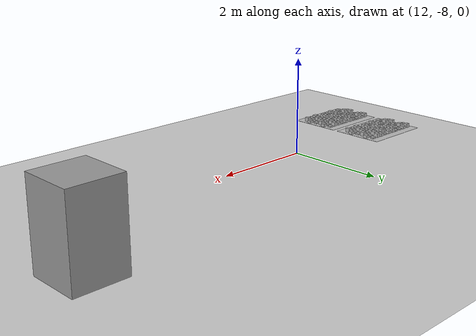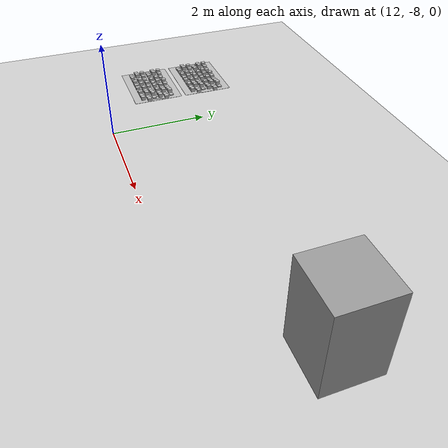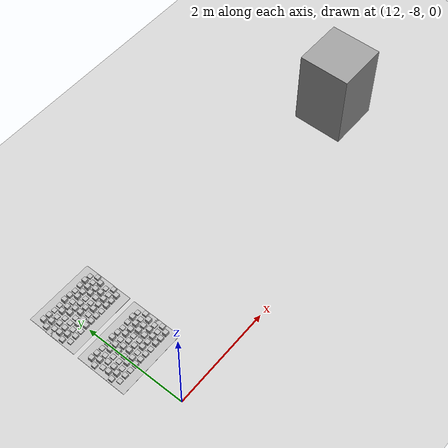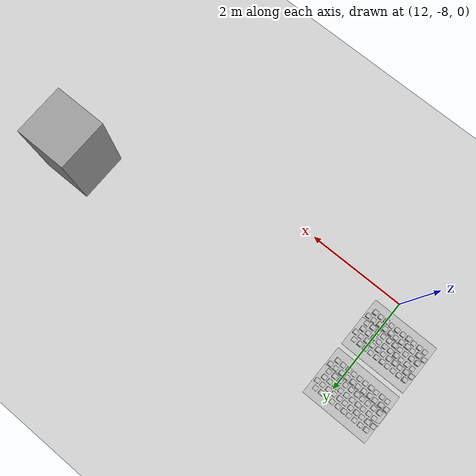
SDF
<sdf version="1.6">
 <world name="default">
  <model name="ground_plane">
   <static>1</static>
   <link name="link">
    <collision name="collision">
     <geometry><plane><normal>0 0 1</normal><size>100 100</size></plane></geometry>
     <surface><friction><ode><mu>100</mu><mu2>50</mu2></ode></friction></surface>
    </collision>
    <visual name="visual">
     <cast_shadows>0</cast_shadows>
     <geometry><plane><normal>0 0 1</normal><size>100 100</size></plane></geometry>
     <material>
      <script><uri>file://media/materials/scripts/gazebo.material</uri><name>Gazebo/Grey</name></script>
     </material>
    </visual>
   </link>
  </model>
  <model name="frc2016_roughterrain_clone_2_clone_clone_4_clone">
   <static>1</static>
   <link name="link">
    <visual name="platform">
     <pose>0 0 0.08269 0 -0 0</pose>
     <geometry><box><size>1.27 0.5969 0.003175</size></box></geometry>
    </visual>
    <collision name="platform">
     <pose>0 0 0.08269 0 -0 0</pose>
     <geometry><box><size>1.27 0.5969 0.003175</size></box></geometry>
    </collision>
    <visual name="row1_block1_sm">
     <pose>0.51435 0.1143 0.09698 0 -0 0</pose>
     <geometry><box><size>0.0762 0.0762 0.0254</size></box></geometry>
    </visual>
    <collision name="row1_block1_sm">
     <pose>0.51435 0.1143 0.09698 0 -0 0</pose>
     <geometry><box><size>0.0762 0.0762 0.0254</size></box></geometry>
    </collision>
    <visual name="row1_block2_lg">
     <pose>0.40005 0.1143 0.12238 0 -0 0</pose>
     <geometry><box><size>0.0762 0.0762 0.0762</size></box></geometry>
    </visual>
    <collision name="row1_block2_lg">
     <pose>0.40005 0.1143 0.12238 0 -0 0</pose>
     <geometry><box><size>0.0762 0.0762 0.0762</size></box></geometry>
    </collision>
    <visual name="row1_block3_md">
     <pose>0.28575 0.1143 0.10968 0 -0 0</pose>
     <geometry><box><size>0.0762 0.0762 0.0508</size></box></geometry>
    </visual>
    <collision name="row1_block3_md">
     <pose>0.28575 0.1143 0.10968 0 -0 0</pose>
     <geometry><box><size>0.0762 0.0762 0.0508</size></box></geometry>
    </collision>
    <visual name="row1_block4_sm">
     <pose>0.17145 0.1143 0.09698 0 -0 0</pose>
     <geometry><box><size>0.0762 0.0762 0.0254</size></box></geometry>
    </visual>
    <collision name="row1_block4_sm">
     <pose>0.17145 0.1143 0.09698 0 -0 0</pose>
     <geometry><box><size>0.0762 0.0762 0.0254</size></box></geometry>
    </collision>
    <visual name="row1_block5_md">
     <pose>0.05715 0.1143 0.10968 0 -0 0</pose>
     <geometry><box><size>0.0762 0.0762 0.0508</size></box></geometry>
    </visual>
    <collision name="row1_block5_md">
     <pose>0.05715 0.1143 0.10968 0 -0 0</pose>
     <geometry><box><size>0.0762 0.0762 0.0508</size></box></geometry>
    </collision>
    <visual name="row1_block6_lg">
     <pose>-0.05715 0.1143 0.12238 0 -0 0</pose>
     <geometry><box><size>0.0762 0.0762 0.0762</size></box></geometry>
    </visual>
    <collision name="row1_block6_lg">
     <pose>-0.05715 0.1143 0.12238 0 -0 0</pose>
     <geometry><box><size>0.0762 0.0762 0.0762</size></box></geometry>
    </collision>
    <visual name="row1_block7_sm">
     <pose>-0.17145 0.1143 0.09698 0 -0 0</pose>
     <geometry><box><size>0.0762 0.0762 0.0254</size></box></geometry>
    </visual>
    <collision name="row1_block7_sm">
     <pose>-0.17145 0.1143 0.09698 0 -0 0</pose>
     <geometry><box><size>0.0762 0.0762 0.0254</size></box></geometry>
    </collision>
    <visual name="row1_block8_sm">
     <pose>-0.28575 0.1143 0.09698 0 -0 0</pose>
     <geometry><box><size>0.0762 0.0762 0.0254</size></box></geometry>
    </visual>
    <collision name="row1_block8_sm">
     <pose>-0.28575 0.1143 0.09698 0 -0 0</pose>
     <geometry><box><size>0.0762 0.0762 0.0254</size></box></geometry>
    </collision>
    <visual name="row1_block9_md">
     <pose>-0.40005 0.1143 0.10968 0 -0 0</pose>
     <geometry><box><size>0.0762 0.0762 0.0508</size></box></geometry>
    </visual>
    <collision name="row1_block9_md">
     <pose>-0.40005 0.1143 0.10968 0 -0 0</pose>
     <geometry><box><size>0.0762 0.0762 0.0508</size></box></geometry>
    </collision>
    <visual name="row1_block10_lg">
     <pose>-0.51435 0.1143 0.12238 0 -0 0</pose>
     <geometry><box><size>0.0762 0.0762 0.0762</size></box></geometry>
    </visual>
    <collision name="row1_block10_lg">
     <pose>-0.51435 0.1143 0.12238 0 -0 0</pose>
     <geometry><box><size>0.0762 0.0762 0.0762</size></box></geometry>
    </collision>
    <visual name="row2_block1_md">
     <pose>0.5715 0 0.10968 0 -0 0</pose>
     <geometry><box><size>0.0762 0.0762 0.0508</size></box></geometry>
    </visual>
    <collision name="row2_block1_md">
     <pose>0.5715 0 0.10968 0 -0 0</pose>
     <geometry><box><size>0.0762 0.0762 0.0508</size></box></geometry>
    </collision>
    <visual name="row2_block2_sm">
     <pose>0.4572 0 0.09698 0 -0 0</pose>
     <geometry><box><size>0.0762 0.0762 0.0254</size></box></geometry>
    </visual>
    <collision name="row2_block2_sm">
     <pose>0.4572 0 0.09698 0 -0 0</pose>
     <geometry><box><size>0.0762 0.0762 0.0254</size></box></geometry>
    </collision>
    <visual name="row2_block3_lg">
     <pose>0.3429 0 0.12238 0 -0 0</pose>
     <geometry><box><size>0.0762 0.0762 0.0762</size></box></geometry>
    </visual>
    <collision name="row2_block3_lg">
     <pose>0.3429 0 0.12238 0 -0 0</pose>
     <geometry><box><size>0.0762 0.0762 0.0762</size></box></geometry>
    </collision>
    <visual name="row2_block4_md">
     <pose>0.2286 0 0.10968 0 -0 0</pose>
     <geometry><box><size>0.0762 0.0762 0.0508</size></box></geometry>
    </visual>
    <collision name="row2_block4_md">
     <pose>0.2286 0 0.10968 0 -0 0</pose>
     <geometry><box><size>0.0762 0.0762 0.0508</size></box></geometry>
    </collision>
    <visual name="row2_block5_lg">
     <pose>0.1143 0 0.12238 0 -0 0</pose>
     <geometry><box><size>0.0762 0.0762 0.0762</size></box></geometry>
    </visual>
    <collision name="row2_block5_lg">
     <pose>0.1143 0 0.12238 0 -0 0</pose>
     <geometry><box><size>0.0762 0.0762 0.0762</size></box></geometry>
    </collision>
    <visual name="row2_block6_sm">
     <pose>0 0 0.09698 0 -0 0</pose>
     <geometry><box><size>0.0762 0.0762 0.0254</size></box></geometry>
    </visual>
    <collision name="row2_block6_sm">
     <pose>0 0 0.09698 0 -0 0</pose>
     <geometry><box><size>0.0762 0.0762 0.0254</size></box></geometry>
    </collision>
    <visual name="row2_block7_md">
     <pose>-0.1143 0 0.10968 0 -0 0</pose>
     <geometry><box><size>0.0762 0.0762 0.0508</size></box></geometry>
    </visual>
    <collision name="row2_block7_md">
     <pose>-0.1143 0 0.10968 0 -0 0</pose>
     <geometry><box><size>0.0762 0.0762 0.0508</size></box></geometry>
    </collision>
    <visual name="row2_block8_lg">
     <pose>-0.2286 0 0.12238 0 -0 0</pose>
     <geometry><box><size>0.0762 0.0762 0.0762</size></box></geometry>
    </visual>
    <collision name="row2_block8_lg">
     <pose>-0.2286 0 0.12238 0 -0 0</pose>
     <geometry><box><size>0.0762 0.0762 0.0762</size></box></geometry>
    </collision>
    <visual name="row2_block9_sm">
     <pose>-0.3429 0 0.09698 0 -0 0</pose>
     <geometry><box><size>0.0762 0.0762 0.0254</size></box></geometry>
    </visual>
    <collision name="row2_block9_sm">
     <pose>-0.3429 0 0.09698 0 -0 0</pose>
     <geometry><box><size>0.0762 0.0762 0.0254</size></box></geometry>
    </collision>
    <visual name="row2_block10_lg">
     <pose>-0.4572 0 0.12238 0 -0 0</pose>
     <geometry><box><size>0.0762 0.0762 0.0762</size></box></geometry>
    </visual>
    <collision name="row2_block10_lg">
     <pose>-0.4572 0 0.12238 0 -0 0</pose>
     <geometry><box><size>0.0762 0.0762 0.0762</size></box></geometry>
    </collision>
    <visual name="row2_block11_md">
     <pose>-0.5715 0 0.10968 0 -0 0</pose>
     <geometry><box><size>0.0762 0.0762 0.0508</size></box></geometry>
    </visual>
    <collision name="row2_block11_md">
     <pose>-0.5715 0 0.10968 0 -0 0</pose>
     <geometry><box><size>0.0762 0.0762 0.0508</size></box></geometry>
    </collision>
    <visual name="row3_block1_lg">
     <pose>0.51435 -0.1143 0.12238 0 -0 0</pose>
     <geometry><box><size>0.0762 0.0762 0.0762</size></box></geometry>
    </visual>
    <collision name="row3_block1_lg">
     <pose>0.51435 -0.1143 0.12238 0 -0 0</pose>
     <geometry><box><size>0.0762 0.0762 0.0762</size></box></geometry>
    </collision>
    <visual name="row3_block2_md">
     <pose>0.40005 -0.1143 0.10968 0 -0 0</pose>
     <geometry><box><size>0.0762 0.0762 0.0508</size></box></geometry>
    </visual>
    <collision name="row3_block2_md">
     <pose>0.40005 -0.1143 0.10968 0 -0 0</pose>
     <geometry><box><size>0.0762 0.0762 0.0508</size></box></geometry>
    </collision>
    <visual name="row3_block3_lg">
     <pose>0.28575 -0.1143 0.12238 0 -0 0</pose>
     <geometry><box><size>0.0762 0.0762 0.0762</size></box></geometry>
    </visual>
    <collision name="row3_block3_lg">
     <pose>0.28575 -0.1143 0.12238 0 -0 0</pose>
     <geometry><box><size>0.0762 0.0762 0.0762</size></box></geometry>
    </collision>
    <visual name="row3_block4_sm">
     <pose>0.17145 -0.1143 0.09698 0 -0 0</pose>
     <geometry><box><size>0.0762 0.0762 0.0254</size></box></geometry>
    </visual>
    <collision name="row3_block4_sm">
     <pose>0.17145 -0.1143 0.09698 0 -0 0</pose>
     <geometry><box><size>0.0762 0.0762 0.0254</size></box></geometry>
    </collision>
    <visual name="row3_block5_md">
     <pose>0.05715 -0.1143 0.10968 0 -0 0</pose>
     <geometry><box><size>0.0762 0.0762 0.0508</size></box></geometry>
    </visual>
    <collision name="row3_block5_md">
     <pose>0.05715 -0.1143 0.10968 0 -0 0</pose>
     <geometry><box><size>0.0762 0.0762 0.0508</size></box></geometry>
    </collision>
    <visual name="row3_block6_md">
     <pose>-0.05715 -0.1143 0.10968 0 -0 0</pose>
     <geometry><box><size>0.0762 0.0762 0.0508</size></box></geometry>
    </visual>
    <collision name="row3_block6_md">
     <pose>-0.05715 -0.1143 0.10968 0 -0 0</pose>
     <geometry><box><size>0.0762 0.0762 0.0508</size></box></geometry>
    </collision>
    <visual name="row3_block7_lg">
     <pose>-0.17145 -0.1143 0.12238 0 -0 0</pose>
     <geometry><box><size>0.0762 0.0762 0.0762</size></box></geometry>
    </visual>
    <collision name="row3_block7_lg">
     <pose>-0.17145 -0.1143 0.12238 0 -0 0</pose>
     <geometry><box><size>0.0762 0.0762 0.0762</size></box></geometry>
    </collision>
    <visual name="row3_block8_sm">
     <pose>-0.28575 -0.1143 0.09698 0 -0 0</pose>
     <geometry><box><size>0.0762 0.0762 0.0254</size></box></geometry>
    </visual>
    <collision name="row3_block8_sm">
     <pose>-0.28575 -0.1143 0.09698 0 -0 0</pose>
     <geometry><box><size>0.0762 0.0762 0.0254</size></box></geometry>
    </collision>
    <visual name="row3_block9_md">
     <pose>-0.40005 -0.1143 0.10968 0 -0 0</pose>
     <geometry><box><size>0.0762 0.0762 0.0508</size></box></geometry>
    </visual>
    <collision name="row3_block9_md">
     <pose>-0.40005 -0.1143 0.10968 0 -0 0</pose>
     <geometry><box><size>0.0762 0.0762 0.0508</size></box></geometry>
    </collision>
    <visual name="row3_block10_sm">
     <pose>-0.51435 -0.1143 0.09698 0 -0 0</pose>
     <geometry><box><size>0.0762 0.0762 0.0254</size></box></geometry>
    </visual>
    <collision name="row3_block10_sm">
     <pose>-0.51435 -0.1143 0.09698 0 -0 0</pose>
     <geometry><box><size>0.0762 0.0762 0.0254</size></box></geometry>
    </collision>
   </link>
   <pose>11.8888 -5.87576 0.826533 0 -0 0</pose>
  </model>
  <model name="frc2016_roughterrain_clone_2_clone_clone_4_clone_0">
   <static>1</static>
   <link name="link">
    <visual name="platform">
     <pose>0 0 0.08269 0 -0 0</pose>
     <geometry><box><size>1.27 0.5969 0.003175</size></box></geometry>
    </visual>
    <collision name="platform">
     <pose>0 0 0.08269 0 -0 0</pose>
     <geometry><box><size>1.27 0.5969 0.003175</size></box></geometry>
    </collision>
    <visual name="row1_block1_sm">
     <pose>0.51435 0.1143 0.09698 0 -0 0</pose>
     <geometry><box><size>0.0762 0.0762 0.0254</size></box></geometry>
    </visual>
    <collision name="row1_block1_sm">
     <pose>0.51435 0.1143 0.09698 0 -0 0</pose>
     <geometry><box><size>0.0762 0.0762 0.0254</size></box></geometry>
    </collision>
    <visual name="row1_block2_lg">
     <pose>0.40005 0.1143 0.12238 0 -0 0</pose>
     <geometry><box><size>0.0762 0.0762 0.0762</size></box></geometry>
    </visual>
    <collision name="row1_block2_lg">
     <pose>0.40005 0.1143 0.12238 0 -0 0</pose>
     <geometry><box><size>0.0762 0.0762 0.0762</size></box></geometry>
    </collision>
    <visual name="row1_block3_md">
     <pose>0.28575 0.1143 0.10968 0 -0 0</pose>
     <geometry><box><size>0.0762 0.0762 0.0508</size></box></geometry>
    </visual>
    <collision name="row1_block3_md">
     <pose>0.28575 0.1143 0.10968 0 -0 0</pose>
     <geometry><box><size>0.0762 0.0762 0.0508</size></box></geometry>
    </collision>
    <visual name="row1_block4_sm">
     <pose>0.17145 0.1143 0.09698 0 -0 0</pose>
     <geometry><box><size>0.0762 0.0762 0.0254</size></box></geometry>
    </visual>
    <collision name="row1_block4_sm">
     <pose>0.17145 0.1143 0.09698 0 -0 0</pose>
     <geometry><box><size>0.0762 0.0762 0.0254</size></box></geometry>
    </collision>
    <visual name="row1_block5_md">
     <pose>0.05715 0.1143 0.10968 0 -0 0</pose>
     <geometry><box><size>0.0762 0.0762 0.0508</size></box></geometry>
    </visual>
    <collision name="row1_block5_md">
     <pose>0.05715 0.1143 0.10968 0 -0 0</pose>
     <geometry><box><size>0.0762 0.0762 0.0508</size></box></geometry>
    </collision>
    <visual name="row1_block6_lg">
     <pose>-0.05715 0.1143 0.12238 0 -0 0</pose>
     <geometry><box><size>0.0762 0.0762 0.0762</size></box></geometry>
    </visual>
    <collision name="row1_block6_lg">
     <pose>-0.05715 0.1143 0.12238 0 -0 0</pose>
     <geometry><box><size>0.0762 0.0762 0.0762</size></box></geometry>
    </collision>
    <visual name="row1_block7_sm">
     <pose>-0.17145 0.1143 0.09698 0 -0 0</pose>
     <geometry><box><size>0.0762 0.0762 0.0254</size></box></geometry>
    </visual>
    <collision name="row1_block7_sm">
     <pose>-0.17145 0.1143 0.09698 0 -0 0</pose>
     <geometry><box><size>0.0762 0.0762 0.0254</size></box></geometry>
    </collision>
    <visual name="row1_block8_sm">
     <pose>-0.28575 0.1143 0.09698 0 -0 0</pose>
     <geometry><box><size>0.0762 0.0762 0.0254</size></box></geometry>
    </visual>
    <collision name="row1_block8_sm">
     <pose>-0.28575 0.1143 0.09698 0 -0 0</pose>
     <geometry><box><size>0.0762 0.0762 0.0254</size></box></geometry>
    </collision>
    <visual name="row1_block9_md">
     <pose>-0.40005 0.1143 0.10968 0 -0 0</pose>
     <geometry><box><size>0.0762 0.0762 0.0508</size></box></geometry>
    </visual>
    <collision name="row1_block9_md">
     <pose>-0.40005 0.1143 0.10968 0 -0 0</pose>
     <geometry><box><size>0.0762 0.0762 0.0508</size></box></geometry>
    </collision>
    <visual name="row1_block10_lg">
     <pose>-0.51435 0.1143 0.12238 0 -0 0</pose>
     <geometry><box><size>0.0762 0.0762 0.0762</size></box></geometry>
    </visual>
    <collision name="row1_block10_lg">
     <pose>-0.51435 0.1143 0.12238 0 -0 0</pose>
     <geometry><box><size>0.0762 0.0762 0.0762</size></box></geometry>
    </collision>
    <visual name="row2_block1_md">
     <pose>0.5715 0 0.10968 0 -0 0</pose>
     <geometry><box><size>0.0762 0.0762 0.0508</size></box></geometry>
    </visual>
    <collision name="row2_block1_md">
     <pose>0.5715 0 0.10968 0 -0 0</pose>
     <geometry><box><size>0.0762 0.0762 0.0508</size></box></geometry>
    </collision>
    <visual name="row2_block2_sm">
     <pose>0.4572 0 0.09698 0 -0 0</pose>
     <geometry><box><size>0.0762 0.0762 0.0254</size></box></geometry>
    </visual>
    <collision name="row2_block2_sm">
     <pose>0.4572 0 0.09698 0 -0 0</pose>
     <geometry><box><size>0.0762 0.0762 0.0254</size></box></geometry>
    </collision>
    <visual name="row2_block3_lg">
     <pose>0.3429 0 0.12238 0 -0 0</pose>
     <geometry><box><size>0.0762 0.0762 0.0762</size></box></geometry>
    </visual>
    <collision name="row2_block3_lg">
     <pose>0.3429 0 0.12238 0 -0 0</pose>
     <geometry><box><size>0.0762 0.0762 0.0762</size></box></geometry>
    </collision>
    <visual name="row2_block4_md">
     <pose>0.2286 0 0.10968 0 -0 0</pose>
     <geometry><box><size>0.0762 0.0762 0.0508</size></box></geometry>
    </visual>
    <collision name="row2_block4_md">
     <pose>0.2286 0 0.10968 0 -0 0</pose>
     <geometry><box><size>0.0762 0.0762 0.0508</size></box></geometry>
    </collision>
    <visual name="row2_block5_lg">
     <pose>0.1143 0 0.12238 0 -0 0</pose>
     <geometry><box><size>0.0762 0.0762 0.0762</size></box></geometry>
    </visual>
    <collision name="row2_block5_lg">
     <pose>0.1143 0 0.12238 0 -0 0</pose>
     <geometry><box><size>0.0762 0.0762 0.0762</size></box></geometry>
    </collision>
    <visual name="row2_block6_sm">
     <pose>0 0 0.09698 0 -0 0</pose>
     <geometry><box><size>0.0762 0.0762 0.0254</size></box></geometry>
    </visual>
    <collision name="row2_block6_sm">
     <pose>0 0 0.09698 0 -0 0</pose>
     <geometry><box><size>0.0762 0.0762 0.0254</size></box></geometry>
    </collision>
    <visual name="row2_block7_md">
     <pose>-0.1143 0 0.10968 0 -0 0</pose>
     <geometry><box><size>0.0762 0.0762 0.0508</size></box></geometry>
    </visual>
    <collision name="row2_block7_md">
     <pose>-0.1143 0 0.10968 0 -0 0</pose>
     <geometry><box><size>0.0762 0.0762 0.0508</size></box></geometry>
    </collision>
    <visual name="row2_block8_lg">
     <pose>-0.2286 0 0.12238 0 -0 0</pose>
     <geometry><box><size>0.0762 0.0762 0.0762</size></box></geometry>
    </visual>
    <collision name="row2_block8_lg">
     <pose>-0.2286 0 0.12238 0 -0 0</pose>
     <geometry><box><size>0.0762 0.0762 0.0762</size></box></geometry>
    </collision>
    <visual name="row2_block9_sm">
     <pose>-0.3429 0 0.09698 0 -0 0</pose>
     <geometry><box><size>0.0762 0.0762 0.0254</size></box></geometry>
    </visual>
    <collision name="row2_block9_sm">
     <pose>-0.3429 0 0.09698 0 -0 0</pose>
     <geometry><box><size>0.0762 0.0762 0.0254</size></box></geometry>
    </collision>
    <visual name="row2_block10_lg">
     <pose>-0.4572 0 0.12238 0 -0 0</pose>
     <geometry><box><size>0.0762 0.0762 0.0762</size></box></geometry>
    </visual>
    <collision name="row2_block10_lg">
     <pose>-0.4572 0 0.12238 0 -0 0</pose>
     <geometry><box><size>0.0762 0.0762 0.0762</size></box></geometry>
    </collision>
    <visual name="row2_block11_md">
     <pose>-0.5715 0 0.10968 0 -0 0</pose>
     <geometry><box><size>0.0762 0.0762 0.0508</size></box></geometry>
    </visual>
    <collision name="row2_block11_md">
     <pose>-0.5715 0 0.10968 0 -0 0</pose>
     <geometry><box><size>0.0762 0.0762 0.0508</size></box></geometry>
    </collision>
    <visual name="row3_block1_lg">
     <pose>0.51435 -0.1143 0.12238 0 -0 0</pose>
     <geometry><box><size>0.0762 0.0762 0.0762</size></box></geometry>
    </visual>
    <collision name="row3_block1_lg">
     <pose>0.51435 -0.1143 0.12238 0 -0 0</pose>
     <geometry><box><size>0.0762 0.0762 0.0762</size></box></geometry>
    </collision>
    <visual name="row3_block2_md">
     <pose>0.40005 -0.1143 0.10968 0 -0 0</pose>
     <geometry><box><size>0.0762 0.0762 0.0508</size></box></geometry>
    </visual>
    <collision name="row3_block2_md">
     <pose>0.40005 -0.1143 0.10968 0 -0 0</pose>
     <geometry><box><size>0.0762 0.0762 0.0508</size></box></geometry>
    </collision>
    <visual name="row3_block3_lg">
     <pose>0.28575 -0.1143 0.12238 0 -0 0</pose>
     <geometry><box><size>0.0762 0.0762 0.0762</size></box></geometry>
    </visual>
    <collision name="row3_block3_lg">
     <pose>0.28575 -0.1143 0.12238 0 -0 0</pose>
     <geometry><box><size>0.0762 0.0762 0.0762</size></box></geometry>
    </collision>
    <visual name="row3_block4_sm">
     <pose>0.17145 -0.1143 0.09698 0 -0 0</pose>
     <geometry><box><size>0.0762 0.0762 0.0254</size></box></geometry>
    </visual>
    <collision name="row3_block4_sm">
     <pose>0.17145 -0.1143 0.09698 0 -0 0</pose>
     <geometry><box><size>0.0762 0.0762 0.0254</size></box></geometry>
    </collision>
    <visual name="row3_block5_md">
     <pose>0.05715 -0.1143 0.10968 0 -0 0</pose>
     <geometry><box><size>0.0762 0.0762 0.0508</size></box></geometry>
    </visual>
    <collision name="row3_block5_md">
     <pose>0.05715 -0.1143 0.10968 0 -0 0</pose>
     <geometry><box><size>0.0762 0.0762 0.0508</size></box></geometry>
    </collision>
    <visual name="row3_block6_md">
     <pose>-0.05715 -0.1143 0.10968 0 -0 0</pose>
     <geometry><box><size>0.0762 0.0762 0.0508</size></box></geometry>
    </visual>
    <collision name="row3_block6_md">
     <pose>-0.05715 -0.1143 0.10968 0 -0 0</pose>
     <geometry><box><size>0.0762 0.0762 0.0508</size></box></geometry>
    </collision>
    <visual name="row3_block7_lg">
     <pose>-0.17145 -0.1143 0.12238 0 -0 0</pose>
     <geometry><box><size>0.0762 0.0762 0.0762</size></box></geometry>
    </visual>
    <collision name="row3_block7_lg">
     <pose>-0.17145 -0.1143 0.12238 0 -0 0</pose>
     <geometry><box><size>0.0762 0.0762 0.0762</size></box></geometry>
    </collision>
    <visual name="row3_block8_sm">
     <pose>-0.28575 -0.1143 0.09698 0 -0 0</pose>
     <geometry><box><size>0.0762 0.0762 0.0254</size></box></geometry>
    </visual>
    <collision name="row3_block8_sm">
     <pose>-0.28575 -0.1143 0.09698 0 -0 0</pose>
     <geometry><box><size>0.0762 0.0762 0.0254</size></box></geometry>
    </collision>
    <visual name="row3_block9_md">
     <pose>-0.40005 -0.1143 0.10968 0 -0 0</pose>
     <geometry><box><size>0.0762 0.0762 0.0508</size></box></geometry>
    </visual>
    <collision name="row3_block9_md">
     <pose>-0.40005 -0.1143 0.10968 0 -0 0</pose>
     <geometry><box><size>0.0762 0.0762 0.0508</size></box></geometry>
    </collision>
    <visual name="row3_block10_sm">
     <pose>-0.51435 -0.1143 0.09698 0 -0 0</pose>
     <geometry><box><size>0.0762 0.0762 0.0254</size></box></geometry>
    </visual>
    <collision name="row3_block10_sm">
     <pose>-0.51435 -0.1143 0.09698 0 -0 0</pose>
     <geometry><box><size>0.0762 0.0762 0.0254</size></box></geometry>
    </collision>
   </link>
   <pose>11.8828 -6.22413 0.826533 0 -0 0</pose>
  </model>
  <model name="frc2016_roughterrain_clone_0_clone">
   <static>1</static>
   <link name="link">
    <visual name="platform">
     <pose>0 0 0.08269 0 -0 0</pose>
     <geometry><box><size>1.27 0.5969 0.003175</size></box></geometry>
    </visual>
    <collision name="platform">
     <pose>0 0 0.08269 0 -0 0</pose>
     <geometry><box><size>1.27 0.5969 0.003175</size></box></geometry>
    </collision>
    <visual name="row1_block1_sm">
     <pose>0.51435 0.1143 0.09698 0 -0 0</pose>
     <geometry><box><size>0.0762 0.0762 0.0254</size></box></geometry>
    </visual>
    <collision name="row1_block1_sm">
     <pose>0.51435 0.1143 0.09698 0 -0 0</pose>
     <geometry><box><size>0.0762 0.0762 0.0254</size></box></geometry>
    </collision>
    <visual name="row1_block2_lg">
     <pose>0.40005 0.1143 0.12238 0 -0 0</pose>
     <geometry><box><size>0.0762 0.0762 0.0762</size></box></geometry>
    </visual>
    <collision name="row1_block2_lg">
     <pose>0.40005 0.1143 0.12238 0 -0 0</pose>
     <geometry><box><size>0.0762 0.0762 0.0762</size></box></geometry>
    </collision>
    <visual name="row1_block3_md">
     <pose>0.28575 0.1143 0.10968 0 -0 0</pose>
     <geometry><box><size>0.0762 0.0762 0.0508</size></box></geometry>
    </visual>
    <collision name="row1_block3_md">
     <pose>0.28575 0.1143 0.10968 0 -0 0</pose>
     <geometry><box><size>0.0762 0.0762 0.0508</size></box></geometry>
    </collision>
    <visual name="row1_block4_sm">
     <pose>0.17145 0.1143 0.09698 0 -0 0</pose>
     <geometry><box><size>0.0762 0.0762 0.0254</size></box></geometry>
    </visual>
    <collision name="row1_block4_sm">
     <pose>0.17145 0.1143 0.09698 0 -0 0</pose>
     <geometry><box><size>0.0762 0.0762 0.0254</size></box></geometry>
    </collision>
    <visual name="row1_block5_md">
     <pose>0.05715 0.1143 0.10968 0 -0 0</pose>
     <geometry><box><size>0.0762 0.0762 0.0508</size></box></geometry>
    </visual>
    <collision name="row1_block5_md">
     <pose>0.05715 0.1143 0.10968 0 -0 0</pose>
     <geometry><box><size>0.0762 0.0762 0.0508</size></box></geometry>
    </collision>
    <visual name="row1_block6_lg">
     <pose>-0.05715 0.1143 0.12238 0 -0 0</pose>
     <geometry><box><size>0.0762 0.0762 0.0762</size></box></geometry>
    </visual>
    <collision name="row1_block6_lg">
     <pose>-0.05715 0.1143 0.12238 0 -0 0</pose>
     <geometry><box><size>0.0762 0.0762 0.0762</size></box></geometry>
    </collision>
    <visual name="row1_block7_sm">
     <pose>-0.17145 0.1143 0.09698 0 -0 0</pose>
     <geometry><box><size>0.0762 0.0762 0.0254</size></box></geometry>
    </visual>
    <collision name="row1_block7_sm">
     <pose>-0.17145 0.1143 0.09698 0 -0 0</pose>
     <geometry><box><size>0.0762 0.0762 0.0254</size></box></geometry>
    </collision>
    <visual name="row1_block8_sm">
     <pose>-0.28575 0.1143 0.09698 0 -0 0</pose>
     <geometry><box><size>0.0762 0.0762 0.0254</size></box></geometry>
    </visual>
    <collision name="row1_block8_sm">
     <pose>-0.28575 0.1143 0.09698 0 -0 0</pose>
     <geometry><box><size>0.0762 0.0762 0.0254</size></box></geometry>
    </collision>
    <visual name="row1_block9_md">
     <pose>-0.40005 0.1143 0.10968 0 -0 0</pose>
     <geometry><box><size>0.0762 0.0762 0.0508</size></box></geometry>
    </visual>
    <collision name="row1_block9_md">
     <pose>-0.40005 0.1143 0.10968 0 -0 0</pose>
     <geometry><box><size>0.0762 0.0762 0.0508</size></box></geometry>
    </collision>
    <visual name="row1_block10_lg">
     <pose>-0.51435 0.1143 0.12238 0 -0 0</pose>
     <geometry><box><size>0.0762 0.0762 0.0762</size></box></geometry>
    </visual>
    <collision name="row1_block10_lg">
     <pose>-0.51435 0.1143 0.12238 0 -0 0</pose>
     <geometry><box><size>0.0762 0.0762 0.0762</size></box></geometry>
    </collision>
    <visual name="row2_block1_md">
     <pose>0.5715 0 0.10968 0 -0 0</pose>
     <geometry><box><size>0.0762 0.0762 0.0508</size></box></geometry>
    </visual>
    <collision name="row2_block1_md">
     <pose>0.5715 0 0.10968 0 -0 0</pose>
     <geometry><box><size>0.0762 0.0762 0.0508</size></box></geometry>
    </collision>
    <visual name="row2_block2_sm">
     <pose>0.4572 0 0.09698 0 -0 0</pose>
     <geometry><box><size>0.0762 0.0762 0.0254</size></box></geometry>
    </visual>
    <collision name="row2_block2_sm">
     <pose>0.4572 0 0.09698 0 -0 0</pose>
     <geometry><box><size>0.0762 0.0762 0.0254</size></box></geometry>
    </collision>
    <visual name="row2_block3_lg">
     <pose>0.3429 0 0.12238 0 -0 0</pose>
     <geometry><box><size>0.0762 0.0762 0.0762</size></box></geometry>
    </visual>
    <collision name="row2_block3_lg">
     <pose>0.3429 0 0.12238 0 -0 0</pose>
     <geometry><box><size>0.0762 0.0762 0.0762</size></box></geometry>
    </collision>
    <visual name="row2_block4_md">
     <pose>0.2286 0 0.10968 0 -0 0</pose>
     <geometry><box><size>0.0762 0.0762 0.0508</size></box></geometry>
    </visual>
    <collision name="row2_block4_md">
     <pose>0.2286 0 0.10968 0 -0 0</pose>
     <geometry><box><size>0.0762 0.0762 0.0508</size></box></geometry>
    </collision>
    <visual name="row2_block5_lg">
     <pose>0.1143 0 0.12238 0 -0 0</pose>
     <geometry><box><size>0.0762 0.0762 0.0762</size></box></geometry>
    </visual>
    <collision name="row2_block5_lg">
     <pose>0.1143 0 0.12238 0 -0 0</pose>
     <geometry><box><size>0.0762 0.0762 0.0762</size></box></geometry>
    </collision>
    <visual name="row2_block6_sm">
     <pose>0 0 0.09698 0 -0 0</pose>
     <geometry><box><size>0.0762 0.0762 0.0254</size></box></geometry>
    </visual>
    <collision name="row2_block6_sm">
     <pose>0 0 0.09698 0 -0 0</pose>
     <geometry><box><size>0.0762 0.0762 0.0254</size></box></geometry>
    </collision>
    <visual name="row2_block7_md">
     <pose>-0.1143 0 0.10968 0 -0 0</pose>
     <geometry><box><size>0.0762 0.0762 0.0508</size></box></geometry>
    </visual>
    <collision name="row2_block7_md">
     <pose>-0.1143 0 0.10968 0 -0 0</pose>
     <geometry><box><size>0.0762 0.0762 0.0508</size></box></geometry>
    </collision>
    <visual name="row2_block8_lg">
     <pose>-0.2286 0 0.12238 0 -0 0</pose>
     <geometry><box><size>0.0762 0.0762 0.0762</size></box></geometry>
    </visual>
    <collision name="row2_block8_lg">
     <pose>-0.2286 0 0.12238 0 -0 0</pose>
     <geometry><box><size>0.0762 0.0762 0.0762</size></box></geometry>
    </collision>
    <visual name="row2_block9_sm">
     <pose>-0.3429 0 0.09698 0 -0 0</pose>
     <geometry><box><size>0.0762 0.0762 0.0254</size></box></geometry>
    </visual>
    <collision name="row2_block9_sm">
     <pose>-0.3429 0 0.09698 0 -0 0</pose>
     <geometry><box><size>0.0762 0.0762 0.0254</size></box></geometry>
    </collision>
    <visual name="row2_block10_lg">
     <pose>-0.4572 0 0.12238 0 -0 0</pose>
     <geometry><box><size>0.0762 0.0762 0.0762</size></box></geometry>
    </visual>
    <collision name="row2_block10_lg">
     <pose>-0.4572 0 0.12238 0 -0 0</pose>
     <geometry><box><size>0.0762 0.0762 0.0762</size></box></geometry>
    </collision>
    <visual name="row2_block11_md">
     <pose>-0.5715 0 0.10968 0 -0 0</pose>
     <geometry><box><size>0.0762 0.0762 0.0508</size></box></geometry>
    </visual>
    <collision name="row2_block11_md">
     <pose>-0.5715 0 0.10968 0 -0 0</pose>
     <geometry><box><size>0.0762 0.0762 0.0508</size></box></geometry>
    </collision>
    <visual name="row3_block1_lg">
     <pose>0.51435 -0.1143 0.12238 0 -0 0</pose>
     <geometry><box><size>0.0762 0.0762 0.0762</size></box></geometry>
    </visual>
    <collision name="row3_block1_lg">
     <pose>0.51435 -0.1143 0.12238 0 -0 0</pose>
     <geometry><box><size>0.0762 0.0762 0.0762</size></box></geometry>
    </collision>
    <visual name="row3_block2_md">
     <pose>0.40005 -0.1143 0.10968 0 -0 0</pose>
     <geometry><box><size>0.0762 0.0762 0.0508</size></box></geometry>
    </visual>
    <collision name="row3_block2_md">
     <pose>0.40005 -0.1143 0.10968 0 -0 0</pose>
     <geometry><box><size>0.0762 0.0762 0.0508</size></box></geometry>
    </collision>
    <visual name="row3_block3_lg">
     <pose>0.28575 -0.1143 0.12238 0 -0 0</pose>
     <geometry><box><size>0.0762 0.0762 0.0762</size></box></geometry>
    </visual>
    <collision name="row3_block3_lg">
     <pose>0.28575 -0.1143 0.12238 0 -0 0</pose>
     <geometry><box><size>0.0762 0.0762 0.0762</size></box></geometry>
    </collision>
    <visual name="row3_block4_sm">
     <pose>0.17145 -0.1143 0.09698 0 -0 0</pose>
     <geometry><box><size>0.0762 0.0762 0.0254</size></box></geometry>
    </visual>
    <collision name="row3_block4_sm">
     <pose>0.17145 -0.1143 0.09698 0 -0 0</pose>
     <geometry><box><size>0.0762 0.0762 0.0254</size></box></geometry>
    </collision>
    <visual name="row3_block5_md">
     <pose>0.05715 -0.1143 0.10968 0 -0 0</pose>
     <geometry><box><size>0.0762 0.0762 0.0508</size></box></geometry>
    </visual>
    <collision name="row3_block5_md">
     <pose>0.05715 -0.1143 0.10968 0 -0 0</pose>
     <geometry><box><size>0.0762 0.0762 0.0508</size></box></geometry>
    </collision>
    <visual name="row3_block6_md">
     <pose>-0.05715 -0.1143 0.10968 0 -0 0</pose>
     <geometry><box><size>0.0762 0.0762 0.0508</size></box></geometry>
    </visual>
    <collision name="row3_block6_md">
     <pose>-0.05715 -0.1143 0.10968 0 -0 0</pose>
     <geometry><box><size>0.0762 0.0762 0.0508</size></box></geometry>
    </collision>
    <visual name="row3_block7_lg">
     <pose>-0.17145 -0.1143 0.12238 0 -0 0</pose>
     <geometry><box><size>0.0762 0.0762 0.0762</size></box></geometry>
    </visual>
    <collision name="row3_block7_lg">
     <pose>-0.17145 -0.1143 0.12238 0 -0 0</pose>
     <geometry><box><size>0.0762 0.0762 0.0762</size></box></geometry>
    </collision>
    <visual name="row3_block8_sm">
     <pose>-0.28575 -0.1143 0.09698 0 -0 0</pose>
     <geometry><box><size>0.0762 0.0762 0.0254</size></box></geometry>
    </visual>
    <collision name="row3_block8_sm">
     <pose>-0.28575 -0.1143 0.09698 0 -0 0</pose>
     <geometry><box><size>0.0762 0.0762 0.0254</size></box></geometry>
    </collision>
    <visual name="row3_block9_md">
     <pose>-0.40005 -0.1143 0.10968 0 -0 0</pose>
     <geometry><box><size>0.0762 0.0762 0.0508</size></box></geometry>
    </visual>
    <collision name="row3_block9_md">
     <pose>-0.40005 -0.1143 0.10968 0 -0 0</pose>
     <geometry><box><size>0.0762 0.0762 0.0508</size></box></geometry>
    </collision>
    <visual name="row3_block10_sm">
     <pose>-0.51435 -0.1143 0.09698 0 -0 0</pose>
     <geometry><box><size>0.0762 0.0762 0.0254</size></box></geometry>
    </visual>
    <collision name="row3_block10_sm">
     <pose>-0.51435 -0.1143 0.09698 0 -0 0</pose>
     <geometry><box><size>0.0762 0.0762 0.0254</size></box></geometry>
    </collision>
   </link>
   <pose>11.8805 -6.90432 0.826533 0 -0 0</pose>
  </model>
  <model name="frc2016_roughterrain_clone_0_clone_clone">
   <static>1</static>
   <link name="link">
    <visual name="platform">
     <pose>0 0 0.08269 0 -0 0</pose>
     <geometry><box><size>1.27 0.5969 0.003175</size></box></geometry>
    </visual>
    <collision name="platform">
     <pose>0 0 0.08269 0 -0 0</pose>
     <geometry><box><size>1.27 0.5969 0.003175</size></box></geometry>
    </collision>
    <visual name="row1_block1_sm">
     <pose>0.51435 0.1143 0.09698 0 -0 0</pose>
     <geometry><box><size>0.0762 0.0762 0.0254</size></box></geometry>
    </visual>
    <collision name="row1_block1_sm">
     <pose>0.51435 0.1143 0.09698 0 -0 0</pose>
     <geometry><box><size>0.0762 0.0762 0.0254</size></box></geometry>
    </collision>
    <visual name="row1_block2_lg">
     <pose>0.40005 0.1143 0.12238 0 -0 0</pose>
     <geometry><box><size>0.0762 0.0762 0.0762</size></box></geometry>
    </visual>
    <collision name="row1_block2_lg">
     <pose>0.40005 0.1143 0.12238 0 -0 0</pose>
     <geometry><box><size>0.0762 0.0762 0.0762</size></box></geometry>
    </collision>
    <visual name="row1_block3_md">
     <pose>0.28575 0.1143 0.10968 0 -0 0</pose>
     <geometry><box><size>0.0762 0.0762 0.0508</size></box></geometry>
    </visual>
    <collision name="row1_block3_md">
     <pose>0.28575 0.1143 0.10968 0 -0 0</pose>
     <geometry><box><size>0.0762 0.0762 0.0508</size></box></geometry>
    </collision>
    <visual name="row1_block4_sm">
     <pose>0.17145 0.1143 0.09698 0 -0 0</pose>
     <geometry><box><size>0.0762 0.0762 0.0254</size></box></geometry>
    </visual>
    <collision name="row1_block4_sm">
     <pose>0.17145 0.1143 0.09698 0 -0 0</pose>
     <geometry><box><size>0.0762 0.0762 0.0254</size></box></geometry>
    </collision>
    <visual name="row1_block5_md">
     <pose>0.05715 0.1143 0.10968 0 -0 0</pose>
     <geometry><box><size>0.0762 0.0762 0.0508</size></box></geometry>
    </visual>
    <collision name="row1_block5_md">
     <pose>0.05715 0.1143 0.10968 0 -0 0</pose>
     <geometry><box><size>0.0762 0.0762 0.0508</size></box></geometry>
    </collision>
    <visual name="row1_block6_lg">
     <pose>-0.05715 0.1143 0.12238 0 -0 0</pose>
     <geometry><box><size>0.0762 0.0762 0.0762</size></box></geometry>
    </visual>
    <collision name="row1_block6_lg">
     <pose>-0.05715 0.1143 0.12238 0 -0 0</pose>
     <geometry><box><size>0.0762 0.0762 0.0762</size></box></geometry>
    </collision>
    <visual name="row1_block7_sm">
     <pose>-0.17145 0.1143 0.09698 0 -0 0</pose>
     <geometry><box><size>0.0762 0.0762 0.0254</size></box></geometry>
    </visual>
    <collision name="row1_block7_sm">
     <pose>-0.17145 0.1143 0.09698 0 -0 0</pose>
     <geometry><box><size>0.0762 0.0762 0.0254</size></box></geometry>
    </collision>
    <visual name="row1_block8_sm">
     <pose>-0.28575 0.1143 0.09698 0 -0 0</pose>
     <geometry><box><size>0.0762 0.0762 0.0254</size></box></geometry>
    </visual>
    <collision name="row1_block8_sm">
     <pose>-0.28575 0.1143 0.09698 0 -0 0</pose>
     <geometry><box><size>0.0762 0.0762 0.0254</size></box></geometry>
    </collision>
    <visual name="row1_block9_md">
     <pose>-0.40005 0.1143 0.10968 0 -0 0</pose>
     <geometry><box><size>0.0762 0.0762 0.0508</size></box></geometry>
    </visual>
    <collision name="row1_block9_md">
     <pose>-0.40005 0.1143 0.10968 0 -0 0</pose>
     <geometry><box><size>0.0762 0.0762 0.0508</size></box></geometry>
    </collision>
    <visual name="row1_block10_lg">
     <pose>-0.51435 0.1143 0.12238 0 -0 0</pose>
     <geometry><box><size>0.0762 0.0762 0.0762</size></box></geometry>
    </visual>
    <collision name="row1_block10_lg">
     <pose>-0.51435 0.1143 0.12238 0 -0 0</pose>
     <geometry><box><size>0.0762 0.0762 0.0762</size></box></geometry>
    </collision>
    <visual name="row2_block1_md">
     <pose>0.5715 0 0.10968 0 -0 0</pose>
     <geometry><box><size>0.0762 0.0762 0.0508</size></box></geometry>
    </visual>
    <collision name="row2_block1_md">
     <pose>0.5715 0 0.10968 0 -0 0</pose>
     <geometry><box><size>0.0762 0.0762 0.0508</size></box></geometry>
    </collision>
    <visual name="row2_block2_sm">
     <pose>0.4572 0 0.09698 0 -0 0</pose>
     <geometry><box><size>0.0762 0.0762 0.0254</size></box></geometry>
    </visual>
    <collision name="row2_block2_sm">
     <pose>0.4572 0 0.09698 0 -0 0</pose>
     <geometry><box><size>0.0762 0.0762 0.0254</size></box></geometry>
    </collision>
    <visual name="row2_block3_lg">
     <pose>0.3429 0 0.12238 0 -0 0</pose>
     <geometry><box><size>0.0762 0.0762 0.0762</size></box></geometry>
    </visual>
    <collision name="row2_block3_lg">
     <pose>0.3429 0 0.12238 0 -0 0</pose>
     <geometry><box><size>0.0762 0.0762 0.0762</size></box></geometry>
    </collision>
    <visual name="row2_block4_md">
     <pose>0.2286 0 0.10968 0 -0 0</pose>
     <geometry><box><size>0.0762 0.0762 0.0508</size></box></geometry>
    </visual>
    <collision name="row2_block4_md">
     <pose>0.2286 0 0.10968 0 -0 0</pose>
     <geometry><box><size>0.0762 0.0762 0.0508</size></box></geometry>
    </collision>
    <visual name="row2_block5_lg">
     <pose>0.1143 0 0.12238 0 -0 0</pose>
     <geometry><box><size>0.0762 0.0762 0.0762</size></box></geometry>
    </visual>
    <collision name="row2_block5_lg">
     <pose>0.1143 0 0.12238 0 -0 0</pose>
     <geometry><box><size>0.0762 0.0762 0.0762</size></box></geometry>
    </collision>
    <visual name="row2_block6_sm">
     <pose>0 0 0.09698 0 -0 0</pose>
     <geometry><box><size>0.0762 0.0762 0.0254</size></box></geometry>
    </visual>
    <collision name="row2_block6_sm">
     <pose>0 0 0.09698 0 -0 0</pose>
     <geometry><box><size>0.0762 0.0762 0.0254</size></box></geometry>
    </collision>
    <visual name="row2_block7_md">
     <pose>-0.1143 0 0.10968 0 -0 0</pose>
     <geometry><box><size>0.0762 0.0762 0.0508</size></box></geometry>
    </visual>
    <collision name="row2_block7_md">
     <pose>-0.1143 0 0.10968 0 -0 0</pose>
     <geometry><box><size>0.0762 0.0762 0.0508</size></box></geometry>
    </collision>
    <visual name="row2_block8_lg">
     <pose>-0.2286 0 0.12238 0 -0 0</pose>
     <geometry><box><size>0.0762 0.0762 0.0762</size></box></geometry>
    </visual>
    <collision name="row2_block8_lg">
     <pose>-0.2286 0 0.12238 0 -0 0</pose>
     <geometry><box><size>0.0762 0.0762 0.0762</size></box></geometry>
    </collision>
    <visual name="row2_block9_sm">
     <pose>-0.3429 0 0.09698 0 -0 0</pose>
     <geometry><box><size>0.0762 0.0762 0.0254</size></box></geometry>
    </visual>
    <collision name="row2_block9_sm">
     <pose>-0.3429 0 0.09698 0 -0 0</pose>
     <geometry><box><size>0.0762 0.0762 0.0254</size></box></geometry>
    </collision>
    <visual name="row2_block10_lg">
     <pose>-0.4572 0 0.12238 0 -0 0</pose>
     <geometry><box><size>0.0762 0.0762 0.0762</size></box></geometry>
    </visual>
    <collision name="row2_block10_lg">
     <pose>-0.4572 0 0.12238 0 -0 0</pose>
     <geometry><box><size>0.0762 0.0762 0.0762</size></box></geometry>
    </collision>
    <visual name="row2_block11_md">
     <pose>-0.5715 0 0.10968 0 -0 0</pose>
     <geometry><box><size>0.0762 0.0762 0.0508</size></box></geometry>
    </visual>
    <collision name="row2_block11_md">
     <pose>-0.5715 0 0.10968 0 -0 0</pose>
     <geometry><box><size>0.0762 0.0762 0.0508</size></box></geometry>
    </collision>
    <visual name="row3_block1_lg">
     <pose>0.51435 -0.1143 0.12238 0 -0 0</pose>
     <geometry><box><size>0.0762 0.0762 0.0762</size></box></geometry>
    </visual>
    <collision name="row3_block1_lg">
     <pose>0.51435 -0.1143 0.12238 0 -0 0</pose>
     <geometry><box><size>0.0762 0.0762 0.0762</size></box></geometry>
    </collision>
    <visual name="row3_block2_md">
     <pose>0.40005 -0.1143 0.10968 0 -0 0</pose>
     <geometry><box><size>0.0762 0.0762 0.0508</size></box></geometry>
    </visual>
    <collision name="row3_block2_md">
     <pose>0.40005 -0.1143 0.10968 0 -0 0</pose>
     <geometry><box><size>0.0762 0.0762 0.0508</size></box></geometry>
    </collision>
    <visual name="row3_block3_lg">
     <pose>0.28575 -0.1143 0.12238 0 -0 0</pose>
     <geometry><box><size>0.0762 0.0762 0.0762</size></box></geometry>
    </visual>
    <collision name="row3_block3_lg">
     <pose>0.28575 -0.1143 0.12238 0 -0 0</pose>
     <geometry><box><size>0.0762 0.0762 0.0762</size></box></geometry>
    </collision>
    <visual name="row3_block4_sm">
     <pose>0.17145 -0.1143 0.09698 0 -0 0</pose>
     <geometry><box><size>0.0762 0.0762 0.0254</size></box></geometry>
    </visual>
    <collision name="row3_block4_sm">
     <pose>0.17145 -0.1143 0.09698 0 -0 0</pose>
     <geometry><box><size>0.0762 0.0762 0.0254</size></box></geometry>
    </collision>
    <visual name="row3_block5_md">
     <pose>0.05715 -0.1143 0.10968 0 -0 0</pose>
     <geometry><box><size>0.0762 0.0762 0.0508</size></box></geometry>
    </visual>
    <collision name="row3_block5_md">
     <pose>0.05715 -0.1143 0.10968 0 -0 0</pose>
     <geometry><box><size>0.0762 0.0762 0.0508</size></box></geometry>
    </collision>
    <visual name="row3_block6_md">
     <pose>-0.05715 -0.1143 0.10968 0 -0 0</pose>
     <geometry><box><size>0.0762 0.0762 0.0508</size></box></geometry>
    </visual>
    <collision name="row3_block6_md">
     <pose>-0.05715 -0.1143 0.10968 0 -0 0</pose>
     <geometry><box><size>0.0762 0.0762 0.0508</size></box></geometry>
    </collision>
    <visual name="row3_block7_lg">
     <pose>-0.17145 -0.1143 0.12238 0 -0 0</pose>
     <geometry><box><size>0.0762 0.0762 0.0762</size></box></geometry>
    </visual>
    <collision name="row3_block7_lg">
     <pose>-0.17145 -0.1143 0.12238 0 -0 0</pose>
     <geometry><box><size>0.0762 0.0762 0.0762</size></box></geometry>
    </collision>
    <visual name="row3_block8_sm">
     <pose>-0.28575 -0.1143 0.09698 0 -0 0</pose>
     <geometry><box><size>0.0762 0.0762 0.0254</size></box></geometry>
    </visual>
    <collision name="row3_block8_sm">
     <pose>-0.28575 -0.1143 0.09698 0 -0 0</pose>
     <geometry><box><size>0.0762 0.0762 0.0254</size></box></geometry>
    </collision>
    <visual name="row3_block9_md">
     <pose>-0.40005 -0.1143 0.10968 0 -0 0</pose>
     <geometry><box><size>0.0762 0.0762 0.0508</size></box></geometry>
    </visual>
    <collision name="row3_block9_md">
     <pose>-0.40005 -0.1143 0.10968 0 -0 0</pose>
     <geometry><box><size>0.0762 0.0762 0.0508</size></box></geometry>
    </collision>
    <visual name="row3_block10_sm">
     <pose>-0.51435 -0.1143 0.09698 0 -0 0</pose>
     <geometry><box><size>0.0762 0.0762 0.0254</size></box></geometry>
    </visual>
    <collision name="row3_block10_sm">
     <pose>-0.51435 -0.1143 0.09698 0 -0 0</pose>
     <geometry><box><size>0.0762 0.0762 0.0254</size></box></geometry>
    </collision>
   </link>
   <pose>11.8794 -7.25438 0.826533 0 -0 0</pose>
  </model>
  <model name="unit_box_clone_10_clone_12">
   <pose>18.3487 -6.33584 0.79937 0 0 -0.000153</pose>
   <link name="link">
    <inertial>
     <mass>1</mass>
     <inertia>
      <ixx>0.166667</ixx>
      <ixy>0</ixy>
      <ixz>0</ixz>
      <iyy>0.166667</iyy>
      <iyz>0</iyz>
      <izz>0.166667</izz>
     </inertia>
    </inertial>
    <collision name="collision"><geometry><box><size>1 1 1.59874</size></box></geometry></collision>
    <visual name="visual">
     <geometry><box><size>1 1 1.59874</size></box></geometry>
     <material>
      <script><name>Gazebo/Grey</name><uri>file://media/materials/scripts/gazebo.material</uri></script>
     </material>
    </visual>
   </link>
  </model>
 </world>
</sdf>
